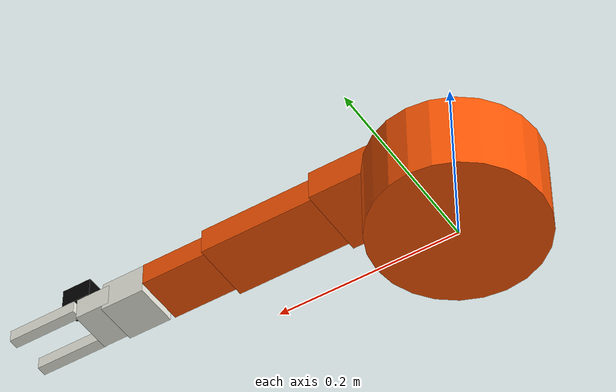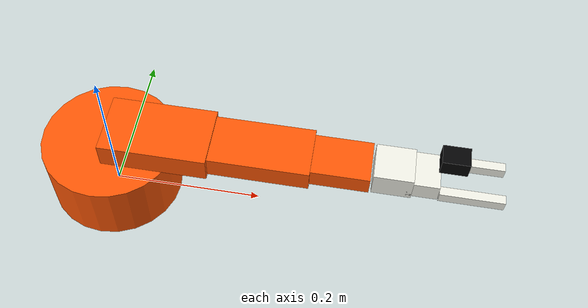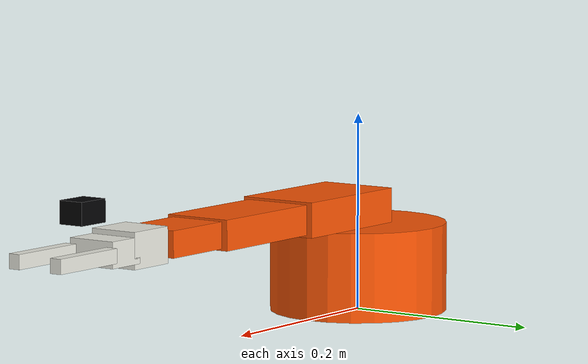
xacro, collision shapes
<?xml version="1.0"?>
<robot xmlns:xacro="http://www.ros.org/wiki/xacro" name="unoq_braccio">
  <xacro:arg name="controllers_file" default=""/>
  <xacro:arg name="mesh_dir" default=""/>

  <material name="braccio_orange"><color rgba="1.0 0.34 0.02 1"/></material>
  <material name="braccio_orange_dark"><color rgba="0.76 0.18 0.02 1"/></material>
  <material name="braccio_white"><color rgba="0.94 0.94 0.9 1"/></material>
  <material name="braccio_metal"><color rgba="0.72 0.72 0.68 1"/></material>
  <material name="braccio_black"><color rgba="0.03 0.035 0.045 1"/></material>
  <material name="camera_black"><color rgba="0.01 0.01 0.015 1"/></material>
  <material name="lens_blue"><color rgba="0.08 0.28 0.55 1"/></material>

  <xacro:macro name="box_inertial" params="mass x y z">
    <inertial>
      <mass value="${mass}"/>
      <inertia
        ixx="${mass * (y * y + z * z) / 12.0}"
        iyy="${mass * (x * x + z * z) / 12.0}"
        izz="${mass * (x * x + y * y) / 12.0}"
        ixy="0" ixz="0" iyz="0"/>
    </inertial>
  </xacro:macro>

  <xacro:macro name="joint_hub_visual" params="x y z radius material">
    <visual>
      <origin xyz="${x} ${y} ${z}" rpy="1.5708 0 0"/>
      <geometry><cylinder radius="${radius}" length="0.018"/></geometry>
      <material name="${material}"/>
    </visual>
  </xacro:macro>

  <xacro:macro name="servo_box_visual" params="x y z sx sy sz">
    <visual>
      <origin xyz="${x} ${y} ${z}"/>
      <geometry><box size="${sx} ${sy} ${sz}"/></geometry>
      <material name="braccio_black"/>
    </visual>
  </xacro:macro>

  <xacro:macro name="mesh_visual" params="filename material x y z rr rp ry">
    <visual>
      <origin xyz="${x} ${y} ${z}" rpy="${rr} ${rp} ${ry}"/>
      <geometry>
        <mesh filename="file://$(arg mesh_dir)/${filename}" scale="0.001 0.001 0.001"/>
      </geometry>
      <material name="${material}"/>
    </visual>
  </xacro:macro>

  <xacro:macro name="paired_arm_link" params="name length plate_height plate_thickness y_offset mesh mesh_x mesh_y mesh_z">
    <link name="${name}">
      <xacro:mesh_visual filename="${mesh}" material="braccio_orange" x="${mesh_x}" y="${mesh_y}" z="${mesh_z}" rr="0" rp="0" ry="0"/>
      <collision>
        <origin xyz="${length / 2.0} 0 0"/>
        <geometry><box size="${length} ${y_offset * 2.0 + plate_thickness} ${plate_height}"/></geometry>
      </collision>
      <xacro:box_inertial mass="0.18" x="${length}" y="${y_offset * 2.0 + plate_thickness}" z="${plate_height}"/>
    </link>
  </xacro:macro>

  <link name="world"/>

  <link name="base_link">
    <xacro:mesh_visual filename="braccio_base.stl" material="braccio_orange" x="0" y="0.004" z="0.04" rr="0" rp="0" ry="3.1416"/>
    <collision>
      <origin xyz="0 0 0.045"/>
      <geometry><cylinder radius="0.09" length="0.09"/></geometry>
    </collision>
    <inertial>
      <mass value="0.7"/>
      <inertia ixx="0.002" iyy="0.002" izz="0.002" ixy="0" ixz="0" iyz="0"/>
    </inertial>
  </link>

  <joint name="base_fixed" type="fixed">
    <parent link="world"/>
    <child link="base_link"/>
  </joint>

  <xacro:paired_arm_link name="shoulder_link" length="0.14" plate_height="0.035" plate_thickness="0.012" y_offset="0.035" mesh="braccio_shoulder.stl" mesh_x="-0.0045" mesh_y="0.0055" mesh_z="-0.026"/>
  <xacro:paired_arm_link name="elbow_link" length="0.13" plate_height="0.03" plate_thickness="0.01" y_offset="0.03" mesh="braccio_elbow.stl" mesh_x="-0.0045" mesh_y="0.005" mesh_z="-0.025"/>
  <xacro:paired_arm_link name="wrist_link" length="0.075" plate_height="0.026" plate_thickness="0.01" y_offset="0.024" mesh="braccio_wrist_pitch.stl" mesh_x="0.003" mesh_y="-0.0004" mesh_z="-0.024"/>

  <link name="wrist_rotate_link">
    <xacro:mesh_visual filename="braccio_wrist_roll.stl" material="braccio_white" x="0.006" y="0" z="0" rr="0" rp="0" ry="0"/>
    <collision>
      <origin xyz="0.028 0 0"/>
      <geometry><box size="0.05 0.05 0.035"/></geometry>
    </collision>
    <xacro:box_inertial mass="0.12" x="0.05" y="0.05" z="0.035"/>
  </link>

  <link name="gripper_carriage">
    <visual>
      <origin xyz="0.02 0 0"/>
      <geometry><box size="0.04 0.05 0.025"/></geometry>
      <material name="braccio_white"/>
    </visual>
    <visual>
      <origin xyz="0.01 0 0.022"/>
      <geometry><cylinder radius="0.019" length="0.018"/></geometry>
      <material name="braccio_metal"/>
    </visual>
    <collision>
      <origin xyz="0.02 0 0"/>
      <geometry><box size="0.04 0.05 0.025"/></geometry>
    </collision>
    <xacro:box_inertial mass="0.1" x="0.04" y="0.05" z="0.025"/>
  </link>

  <link name="left_finger">
    <xacro:mesh_visual filename="braccio_left_gripper.stl" material="braccio_white" x="0" y="-0.012" z="0" rr="0" rp="1.5708" ry="0"/>
    <collision>
      <origin xyz="0.04 0.024 0"/>
      <geometry><box size="0.08 0.012 0.014"/></geometry>
    </collision>
    <xacro:box_inertial mass="0.03" x="0.08" y="0.012" z="0.014"/>
  </link>

  <link name="right_finger">
    <xacro:mesh_visual filename="braccio_right_gripper.stl" material="braccio_white" x="0" y="-0.012" z="0.010" rr="0" rp="1.5708" ry="0"/>
    <collision>
      <origin xyz="0.04 -0.024 0"/>
      <geometry><box size="0.08 0.012 0.014"/></geometry>
    </collision>
    <xacro:box_inertial mass="0.03" x="0.08" y="0.012" z="0.014"/>
  </link>

  <link name="camera_link">
    <visual>
      <origin xyz="0 0 0"/>
      <geometry><box size="0.034 0.026 0.022"/></geometry>
      <material name="camera_black"/>
    </visual>
    <visual>
      <origin xyz="0.018 0 0" rpy="0 1.5708 0"/>
      <geometry><cylinder radius="0.008" length="0.006"/></geometry>
      <material name="lens_blue"/>
    </visual>
    <collision>
      <geometry><box size="0.034 0.026 0.022"/></geometry>
    </collision>
    <xacro:box_inertial mass="0.04" x="0.034" y="0.026" z="0.022"/>
  </link>

  <joint name="base" type="revolute">
    <parent link="base_link"/>
    <child link="shoulder_link"/>
    <origin xyz="0 0 0.11"/>
    <axis xyz="0 0 1"/>
    <limit lower="-1.5708" upper="1.5708" effort="2" velocity="1"/>
  </joint>

  <joint name="shoulder" type="revolute">
    <parent link="shoulder_link"/>
    <child link="elbow_link"/>
    <origin xyz="0.14 0 0"/>
    <axis xyz="0 1 0"/>
    <limit lower="-1.309" upper="1.309" effort="2" velocity="1"/>
  </joint>

  <joint name="elbow" type="revolute">
    <parent link="elbow_link"/>
    <child link="wrist_link"/>
    <origin xyz="0.13 0 0"/>
    <axis xyz="0 1 0"/>
    <limit lower="-1.5708" upper="1.5708" effort="2" velocity="1"/>
  </joint>

  <joint name="wrist_vertical" type="revolute">
    <parent link="wrist_link"/>
    <child link="wrist_rotate_link"/>
    <origin xyz="0.075 0 0"/>
    <axis xyz="0 1 0"/>
    <limit lower="-1.5708" upper="1.5708" effort="1" velocity="1"/>
  </joint>

  <joint name="wrist_rotation" type="revolute">
    <parent link="wrist_rotate_link"/>
    <child link="gripper_carriage"/>
    <origin xyz="0.045 0 0"/>
    <axis xyz="1 0 0"/>
    <limit lower="-1.5708" upper="1.5708" effort="1" velocity="1"/>
  </joint>

  <joint name="gripper" type="prismatic">
    <parent link="gripper_carriage"/>
    <child link="left_finger"/>
    <origin xyz="0.04 0 0"/>
    <axis xyz="0 1 0"/>
    <limit lower="0" upper="0.035" effort="1" velocity="0.05"/>
  </joint>

  <joint name="right_finger_fixed" type="fixed">
    <parent link="gripper_carriage"/>
    <child link="right_finger"/>
    <origin xyz="0.04 0 0"/>
  </joint>

  <joint name="camera_mount" type="fixed">
    <parent link="gripper_carriage"/>
    <child link="camera_link"/>
    <origin xyz="0.052 0 0.04" rpy="0 0 0"/>
  </joint>

  <ros2_control name="GazeboSystem" type="system">
    <hardware>
      <plugin>gz_ros2_control/GazeboSimSystem</plugin>
    </hardware>
    <joint name="base">
      <command_interface name="position"/>
      <state_interface name="position"/>
      <state_interface name="velocity"/>
    </joint>
    <joint name="shoulder">
      <command_interface name="position"/>
      <state_interface name="position"/>
      <state_interface name="velocity"/>
    </joint>
    <joint name="elbow">
      <command_interface name="position"/>
      <state_interface name="position"/>
      <state_interface name="velocity"/>
    </joint>
    <joint name="wrist_vertical">
      <command_interface name="position"/>
      <state_interface name="position"/>
      <state_interface name="velocity"/>
    </joint>
    <joint name="wrist_rotation">
      <command_interface name="position"/>
      <state_interface name="position"/>
      <state_interface name="velocity"/>
    </joint>
    <joint name="gripper">
      <command_interface name="position"/>
      <state_interface name="position"/>
      <state_interface name="velocity"/>
    </joint>
  </ros2_control>

  <gazebo>
    <plugin filename="libgz_ros2_control-system.so" name="gz_ros2_control::GazeboSimROS2ControlPlugin">
      <parameters>$(arg controllers_file)</parameters>
    </plugin>
  </gazebo>
</robot>
